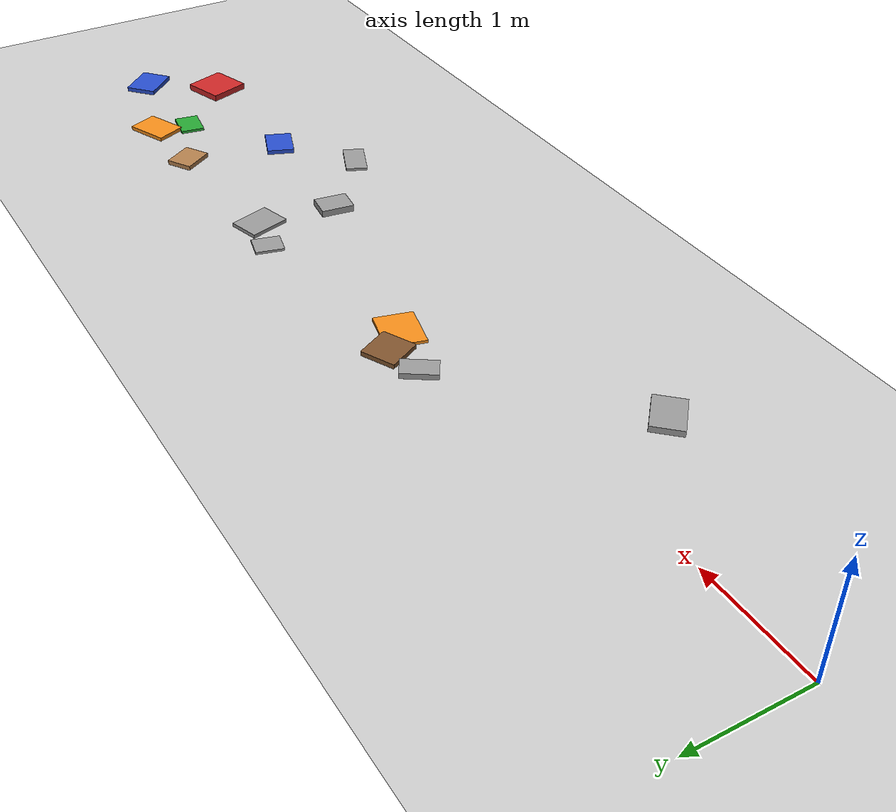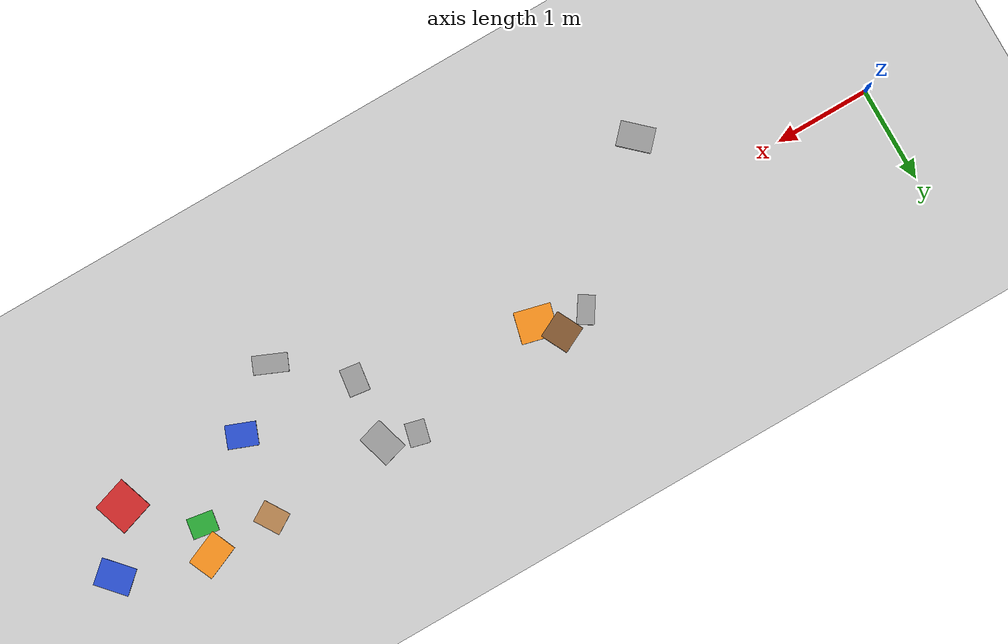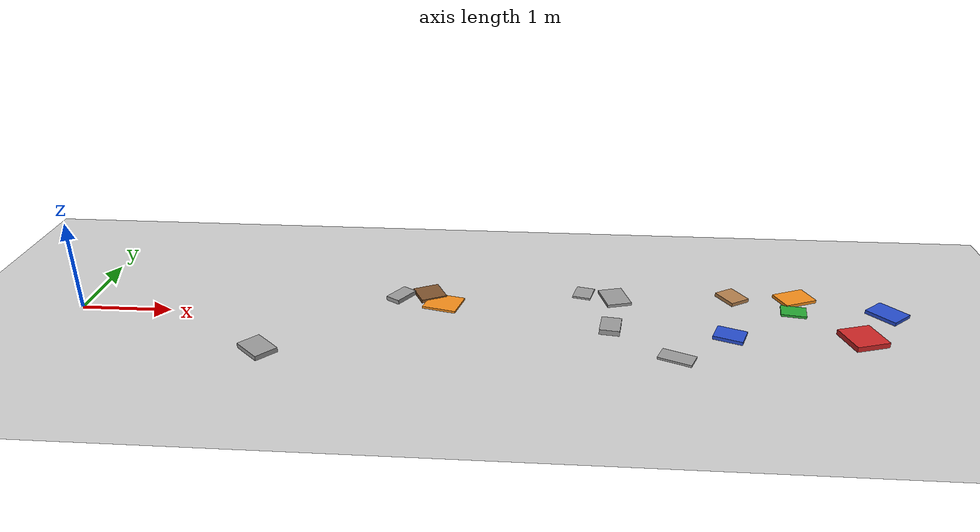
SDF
<?xml version="1.0" ?>
<!-- 由 omni_world.py 自动生成: scene=rough seed=1 -->
<sdf version="1.5">
  <world name="rough">
    <physics type="ode">
      <type>world</type>
      <max_step_size>0.001</max_step_size>
      <real_time_update_rate>1000</real_time_update_rate>
      <iters>500</iters>
    </physics>
    <include><uri>model://sun</uri></include>
    <include><uri>model://ground_plane</uri></include>
    <model name="rock_0">
      <static>true</static>
      <pose>7.856 0.422 0.013 0.0000 0.0000 1.4121</pose>
      <link name="link">
        <collision name="collision">
          <geometry><box><size>0.214 0.274 0.025</size></box></geometry>
          <surface><friction><ode><mu>1.0</mu><mu2>1.0</mu2></ode></friction></surface>
        </collision>
        <visual name="visual">
          <geometry><box><size>0.214 0.274 0.025</size></box></geometry>
          <material><script><uri>file://media/materials/scripts/gazebo.material</uri>
            <name>Gazebo/Green</name></script></material>
        </visual>
      </link>
    </model>
    <model name="rock_1">
      <static>true</static>
      <pose>2.204 -0.755 0.026 0.0000 0.0000 2.3948</pose>
      <link name="link">
        <collision name="collision">
          <geometry><box><size>0.359 0.258 0.052</size></box></geometry>
          <surface><friction><ode><mu>1.0</mu><mu2>1.0</mu2></ode></friction></surface>
        </collision>
        <visual name="visual">
          <geometry><box><size>0.359 0.258 0.052</size></box></geometry>
          <material><script><uri>file://media/materials/scripts/gazebo.material</uri>
            <name>Gazebo/Grey</name></script></material>
        </visual>
      </link>
    </model>
    <model name="rock_2">
      <static>true</static>
      <pose>3.497 0.483 0.024 0.0000 0.0000 0.9972</pose>
      <link name="link">
        <collision name="collision">
          <geometry><box><size>0.298 0.176 0.048</size></box></geometry>
          <surface><friction><ode><mu>1.0</mu><mu2>1.0</mu2></ode></friction></surface>
        </collision>
        <visual name="visual">
          <geometry><box><size>0.298 0.176 0.048</size></box></geometry>
          <material><script><uri>file://media/materials/scripts/gazebo.material</uri>
            <name>Gazebo/Grey</name></script></material>
        </visual>
      </link>
    </model>
    <model name="rock_3">
      <static>true</static>
      <pose>5.561 0.703 0.011 0.0000 0.0000 1.3261</pose>
      <link name="link">
        <collision name="collision">
          <geometry><box><size>0.245 0.204 0.021</size></box></geometry>
          <surface><friction><ode><mu>1.0</mu><mu2>1.0</mu2></ode></friction></surface>
        </collision>
        <visual name="visual">
          <geometry><box><size>0.245 0.204 0.021</size></box></geometry>
          <material><script><uri>file://media/materials/scripts/gazebo.material</uri>
            <name>Gazebo/Grey</name></script></material>
        </visual>
      </link>
    </model>
    <model name="rock_4">
      <static>true</static>
      <pose>7.228 0.703 0.021 0.0000 0.0000 2.1264</pose>
      <link name="link">
        <collision name="collision">
          <geometry><box><size>0.288 0.236 0.041</size></box></geometry>
          <surface><friction><ode><mu>1.0</mu><mu2>1.0</mu2></ode></friction></surface>
        </collision>
        <visual name="visual">
          <geometry><box><size>0.288 0.236 0.041</size></box></geometry>
          <material><script><uri>file://media/materials/scripts/gazebo.material</uri>
            <name>Gazebo/Wood</name></script></material>
        </visual>
      </link>
    </model>
    <model name="rock_5">
      <static>true</static>
      <pose>8.449 -0.134 0.029 0.0000 0.0000 0.3142</pose>
      <link name="link">
        <collision name="collision">
          <geometry><box><size>0.379 0.381 0.058</size></box></geometry>
          <surface><friction><ode><mu>1.0</mu><mu2>1.0</mu2></ode></friction></surface>
        </collision>
        <visual name="visual">
          <geometry><box><size>0.379 0.381 0.058</size></box></geometry>
          <material><script><uri>file://media/materials/scripts/gazebo.material</uri>
            <name>Gazebo/Red</name></script></material>
        </visual>
      </link>
    </model>
    <model name="rock_6">
      <static>true</static>
      <pose>3.995 0.354 0.012 0.0000 0.0000 1.3261</pose>
      <link name="link">
        <collision name="collision">
          <geometry><box><size>0.328 0.384 0.025</size></box></geometry>
          <surface><friction><ode><mu>1.0</mu><mu2>1.0</mu2></ode></friction></surface>
        </collision>
        <visual name="visual">
          <geometry><box><size>0.328 0.384 0.025</size></box></geometry>
          <material><script><uri>file://media/materials/scripts/gazebo.material</uri>
            <name>Gazebo/Orange</name></script></material>
        </visual>
      </link>
    </model>
    <model name="rock_7">
      <static>true</static>
      <pose>5.907 0.612 0.016 0.0000 0.0000 1.8504</pose>
      <link name="link">
        <collision name="collision">
          <geometry><box><size>0.362 0.276 0.032</size></box></geometry>
          <surface><friction><ode><mu>1.0</mu><mu2>1.0</mu2></ode></friction></surface>
        </collision>
        <visual name="visual">
          <geometry><box><size>0.362 0.276 0.032</size></box></geometry>
          <material><script><uri>file://media/materials/scripts/gazebo.material</uri>
            <name>Gazebo/Grey</name></script></material>
        </visual>
      </link>
    </model>
    <model name="rock_8">
      <static>true</static>
      <pose>7.078 -0.153 0.020 0.0000 0.0000 2.7732</pose>
      <link name="link">
        <collision name="collision">
          <geometry><box><size>0.316 0.242 0.039</size></box></geometry>
          <surface><friction><ode><mu>1.0</mu><mu2>1.0</mu2></ode></friction></surface>
        </collision>
        <visual name="visual">
          <geometry><box><size>0.316 0.242 0.039</size></box></geometry>
          <material><script><uri>file://media/materials/scripts/gazebo.material</uri>
            <name>Gazebo/Blue</name></script></material>
        </visual>
      </link>
    </model>
    <model name="rock_9">
      <static>true</static>
      <pose>6.478 -0.627 0.012 0.0000 0.0000 1.1640</pose>
      <link name="link">
        <collision name="collision">
          <geometry><box><size>0.191 0.360 0.023</size></box></geometry>
          <surface><friction><ode><mu>1.0</mu><mu2>1.0</mu2></ode></friction></surface>
        </collision>
        <visual name="visual">
          <geometry><box><size>0.191 0.360 0.023</size></box></geometry>
          <material><script><uri>file://media/materials/scripts/gazebo.material</uri>
            <name>Gazebo/Grey</name></script></material>
        </visual>
      </link>
    </model>
    <model name="rock_10">
      <static>true</static>
      <pose>3.814 0.557 0.019 0.0000 0.0000 2.0331</pose>
      <link name="link">
        <collision name="collision">
          <geometry><box><size>0.304 0.295 0.039</size></box></geometry>
          <surface><friction><ode><mu>1.0</mu><mu2>1.0</mu2></ode></friction></surface>
        </collision>
        <visual name="visual">
          <geometry><box><size>0.304 0.295 0.039</size></box></geometry>
          <material><script><uri>file://media/materials/scripts/gazebo.material</uri>
            <name>Gazebo/Brown</name></script></material>
        </visual>
      </link>
    </model>
    <model name="rock_11">
      <static>true</static>
      <pose>8.866 0.433 0.020 0.0000 0.0000 0.7294</pose>
      <link name="link">
        <collision name="collision">
          <geometry><box><size>0.285 0.365 0.040</size></box></geometry>
          <surface><friction><ode><mu>1.0</mu><mu2>1.0</mu2></ode></friction></surface>
        </collision>
        <visual name="visual">
          <geometry><box><size>0.285 0.365 0.040</size></box></geometry>
          <material><script><uri>file://media/materials/scripts/gazebo.material</uri>
            <name>Gazebo/Blue</name></script></material>
        </visual>
      </link>
    </model>
    <model name="rock_12">
      <static>true</static>
      <pose>5.833 -0.065 0.029 0.0000 0.0000 3.0069</pose>
      <link name="link">
        <collision name="collision">
          <geometry><box><size>0.217 0.287 0.058</size></box></geometry>
          <surface><friction><ode><mu>1.0</mu><mu2>1.0</mu2></ode></friction></surface>
        </collision>
        <visual name="visual">
          <geometry><box><size>0.217 0.287 0.058</size></box></geometry>
          <material><script><uri>file://media/materials/scripts/gazebo.material</uri>
            <name>Gazebo/Grey</name></script></material>
        </visual>
      </link>
    </model>
    <model name="rock_13">
      <static>true</static>
      <pose>7.927 0.727 0.018 0.0000 0.0000 0.4060</pose>
      <link name="link">
        <collision name="collision">
          <geometry><box><size>0.385 0.278 0.035</size></box></geometry>
          <surface><friction><ode><mu>1.0</mu><mu2>1.0</mu2></ode></friction></surface>
        </collision>
        <visual name="visual">
          <geometry><box><size>0.385 0.278 0.035</size></box></geometry>
          <material><script><uri>file://media/materials/scripts/gazebo.material</uri>
            <name>Gazebo/Orange</name></script></material>
        </visual>
      </link>
    </model>

  </world>
</sdf>
